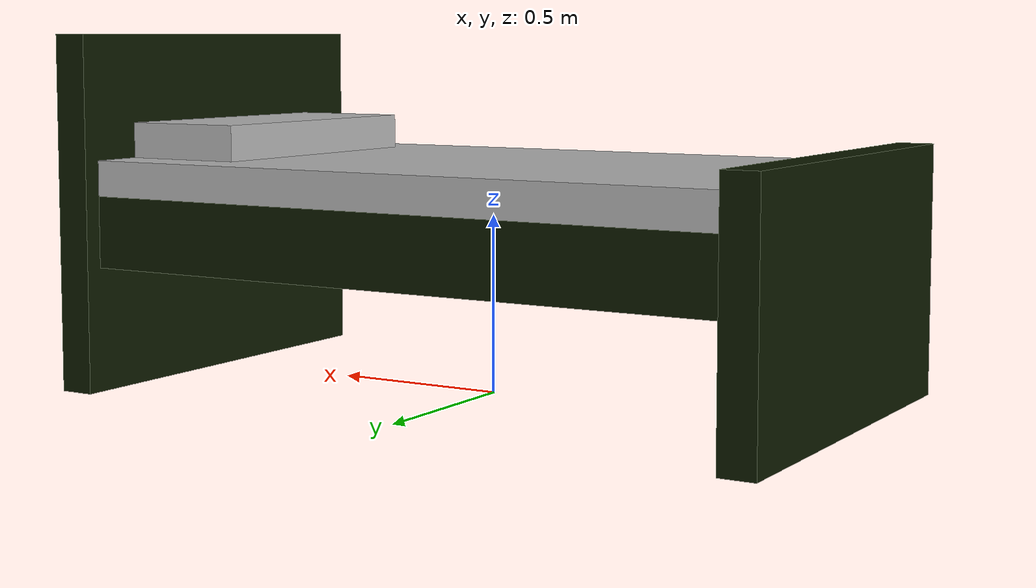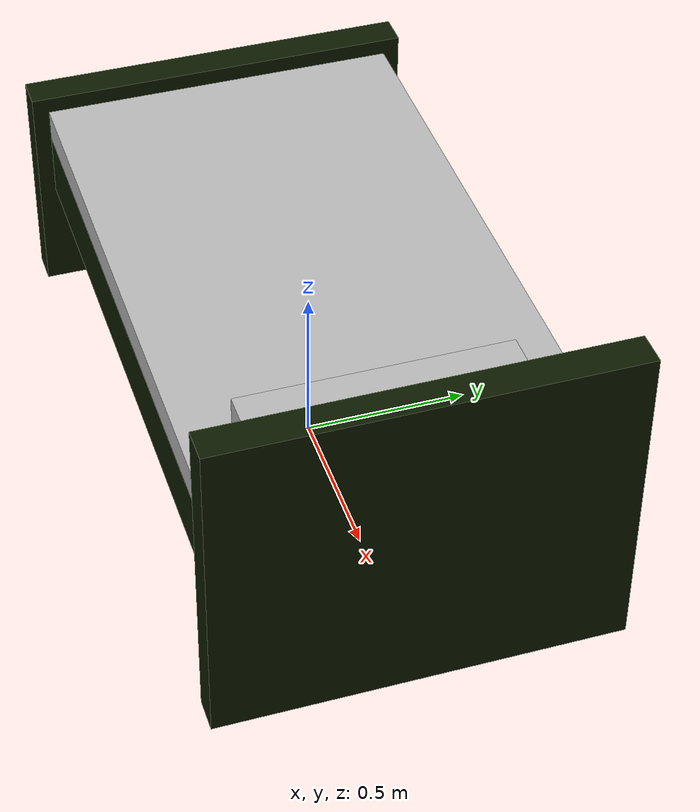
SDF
<?xml version='1.0'?>
<sdf version="1.5">
<model name="bed">
  <static>true</static>
    <link name="link">
      <pose>0 0 0.6 0 0 0</pose>
      <inertial>
        <mass>1.0</mass>
        <inertia> <!-- interias are tricky to compute -->
          <!-- http://answers.gazebosim.org/question/4372/the-inertia-matrix-explained/ -->
          <ixx>0.083</ixx>       <!-- for a box: ixx = 0.083 * mass * (y*y + z*z) -->
          <ixy>0.0</ixy>         <!-- for a box: ixy = 0 -->
          <ixz>0.0</ixz>         <!-- for a box: ixz = 0 -->
          <iyy>0.083</iyy>       <!-- for a box: iyy = 0.083 * mass * (x*x + z*z) -->
          <iyz>0.0</iyz>         <!-- for a box: iyz = 0 -->
          <izz>0.083</izz>       <!-- for a box: izz = 0.083 * mass * (x*x + y*y) -->
        </inertia>
      </inertial>
      <collision name="collision">
        <geometry>
          <box>
            <size>2.0    1.1    0.10</size>
          </box>
        </geometry>
      </collision>
      <visual name="visual">
        <geometry>
          <box>
            <size>2.0    1.1    0.10</size>
          </box>
        </geometry>
      </visual>
    </link>

    <link name="link2">
      <pose>0 0 0.45 0 0 0</pose>
      <inertial>
        <mass>1.0</mass>
        <inertia> <!-- interias are tricky to compute -->
          <!-- http://answers.gazebosim.org/question/4372/the-inertia-matrix-explained/ -->
          <ixx>0.083</ixx>       <!-- for a box: ixx = 0.083 * mass * (y*y + z*z) -->
          <ixy>0.0</ixy>         <!-- for a box: ixy = 0 -->
          <ixz>0.0</ixz>         <!-- for a box: ixz = 0 -->
          <iyy>0.083</iyy>       <!-- for a box: iyy = 0.083 * mass * (x*x + z*z) -->
          <iyz>0.0</iyz>         <!-- for a box: iyz = 0 -->
          <izz>0.083</izz>       <!-- for a box: izz = 0.083 * mass * (x*x + y*y) -->
        </inertia>
      </inertial>
      <collision name="collision">
        <geometry>
          <box>
            <size>2.0    1.1    0.20</size>
          </box>
        </geometry>
      </collision>
      <visual name="visual">
        <geometry>
          <box>
            <size>2.0    1.1    0.20</size>
          </box>
        </geometry>
	<material>
	  <ambient>0.25 0 0 1</ambient>
	  <diffuse>0.05 0.1 0 1</diffuse>
	  <specular>0.1 0.1 0.1 1</specular>
	  <emissive>0 0 0 0</emissive>
	</material>
      </visual>
    </link>

    <link name="link3">
      <pose>1 0 0.5 0 0 0</pose>
      <inertial>
        <mass>1.0</mass>
        <inertia> <!-- interias are tricky to compute -->
          <!-- http://answers.gazebosim.org/question/4372/the-inertia-matrix-explained/ -->
          <ixx>0.083</ixx>       <!-- for a box: ixx = 0.083 * mass * (y*y + z*z) -->
          <ixy>0.0</ixy>         <!-- for a box: ixy = 0 -->
          <ixz>0.0</ixz>         <!-- for a box: ixz = 0 -->
          <iyy>0.083</iyy>       <!-- for a box: iyy = 0.083 * mass * (x*x + z*z) -->
          <iyz>0.0</iyz>         <!-- for a box: iyz = 0 -->
          <izz>0.083</izz>       <!-- for a box: izz = 0.083 * mass * (x*x + y*y) -->
        </inertia>
      </inertial>
      <collision name="collision">
        <geometry>
          <box>
            <size>0.1    1.2    1.0</size>
          </box>
        </geometry>
      </collision>
      <visual name="visual">
        <geometry>
          <box>
            <size>0.1    1.2    1.0</size>
          </box>
        </geometry>
	<material>
	  <ambient>0.25 0 0 1</ambient>
	  <diffuse>0.05 0.1 0 1</diffuse>
	  <specular>0.1 0.1 0.1 1</specular>
	  <emissive>0 0 0 0</emissive>
	</material>
      </visual>
    </link>

    <link name="link4">
      <pose>-1 0 0.35 0 0 0</pose>
      <inertial>
        <mass>1.0</mass>
        <inertia> <!-- interias are tricky to compute -->
          <!-- http://answers.gazebosim.org/question/4372/the-inertia-matrix-explained/ -->
          <ixx>0.083</ixx>       <!-- for a box: ixx = 0.083 * mass * (y*y + z*z) -->
          <ixy>0.0</ixy>         <!-- for a box: ixy = 0 -->
          <ixz>0.0</ixz>         <!-- for a box: ixz = 0 -->
          <iyy>0.083</iyy>       <!-- for a box: iyy = 0.083 * mass * (x*x + z*z) -->
          <iyz>0.0</iyz>         <!-- for a box: iyz = 0 -->
          <izz>0.083</izz>       <!-- for a box: izz = 0.083 * mass * (x*x + y*y) -->
        </inertia>
      </inertial>
      <collision name="collision">
        <geometry>
          <box>
            <size>0.1    1.2    0.70</size>
          </box>
        </geometry>
      </collision>
      <visual name="visual">
        <geometry>
          <box>
            <size>0.1    1.2    0.70</size>
          </box>
        </geometry>
	<material>
	  <ambient>0.25 0 0 1</ambient>
	  <diffuse>0.05 0.1 0 1</diffuse>
	  <specular>0.1 0.1 0.1 1</specular>
	  <emissive>0 0 0 0</emissive>
	</material>
      </visual>
    </link>

    <link name="link5">
      <pose>0.80 0 0.7 0 0 0</pose>
      <inertial>
        <mass>1.0</mass>
        <inertia> <!-- interias are tricky to compute -->
          <!-- http://answers.gazebosim.org/question/4372/the-inertia-matrix-explained/ -->
          <ixx>0.083</ixx>       <!-- for a box: ixx = 0.083 * mass * (y*y + z*z) -->
          <ixy>0.0</ixy>         <!-- for a box: ixy = 0 -->
          <ixz>0.0</ixz>         <!-- for a box: ixz = 0 -->
          <iyy>0.083</iyy>       <!-- for a box: iyy = 0.083 * mass * (x*x + z*z) -->
          <iyz>0.0</iyz>         <!-- for a box: iyz = 0 -->
          <izz>0.083</izz>       <!-- for a box: izz = 0.083 * mass * (x*x + y*y) -->
        </inertia>
      </inertial>
      <collision name="collision">
        <geometry>
          <box>
            <size>0.4    0.8    0.10</size>
          </box>
        </geometry>
      </collision>
      <visual name="visual">
        <geometry>
          <box>
            <size>0.4    0.8    0.10</size>
          </box>
        </geometry>
      </visual>
    </link>

  </model>
</sdf>
